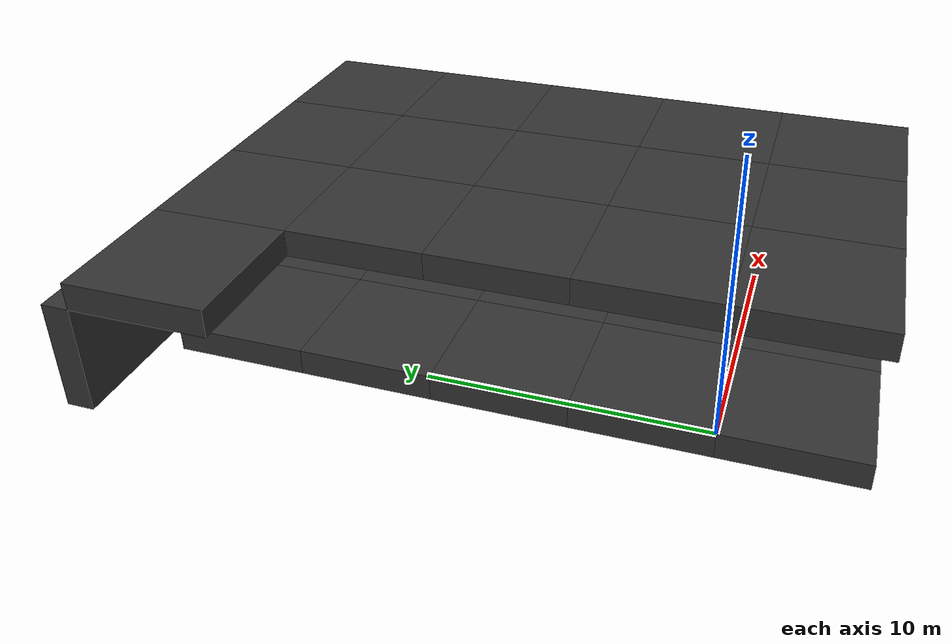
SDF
<sdf version="1.7">
 <world name="RG1">
  <model name="ceiling_36">
   <static>true</static>
   <pose>-2.5 17.5 4.5 0.0 0.0 0.0</pose>
   <link name="ceiling_36-base-link">
    <visual name="ceiling_36-visual">
     <geometry><box><size>5 5 1.0</size></box></geometry>
     <material><diffuse>0.2 0.2 0.2 1</diffuse><specular>0.1 0.1 0.1 1</specular></material>
    </visual>
    <collision name="ceiling_36-collision"><geometry><box><size>5 5 1.0</size></box></geometry></collision>
    <light type="point" name="ceiling_36-light">
     <pose>0 0 -1 0 0 0</pose>
     <cast_shadows>false</cast_shadows>
     <diffuse>0.8 0.8 0.8 1</diffuse>
     <attenuation>
      <range>10</range>
      <constant>0.8</constant>
      <linear>0.05</linear>
      <quadratic>0.01</quadratic>
     </attenuation>
    </light>
   </link>
  </model>
  <model name="wall_17">
   <static>true</static>
   <pose>-2.5 20.5 2.0 0.0 0.0 0.0</pose>
   <link name="wall_17-base-link">
    <visual name="wall_17-visual">
     <geometry><box><size>5 1 4</size></box></geometry>
     <material><diffuse>0.2 0.2 0.2 1</diffuse><specular>0.1 0.1 0.1 1</specular></material>
    </visual>
    <collision name="wall_17-collision"><geometry><box><size>5 1 4</size></box></geometry></collision>
   </link>
  </model>
  <model name="floor_41">
   <static>true</static>
   <pose>2.5 -2.5 -0.5 0.0 0.0 0.0</pose>
   <link name="floor_41-base-link">
    <visual name="floor_41-visual">
     <geometry><box><size>5 5 1.0</size></box></geometry>
     <material><diffuse>0.2 0.2 0.2 1</diffuse><specular>0.1 0.1 0.1 1</specular></material>
    </visual>
    <collision name="floor_41-collision"><geometry><box><size>5 5 1.0</size></box></geometry></collision>
   </link>
  </model>
  <model name="ceiling_41">
   <static>true</static>
   <pose>2.5 -2.5 4.5 0.0 0.0 0.0</pose>
   <link name="ceiling_41-base-link">
    <visual name="ceiling_41-visual">
     <geometry><box><size>5 5 1.0</size></box></geometry>
     <material><diffuse>0.2 0.2 0.2 1</diffuse><specular>0.1 0.1 0.1 1</specular></material>
    </visual>
    <collision name="ceiling_41-collision"><geometry><box><size>5 5 1.0</size></box></geometry></collision>
    <light type="point" name="ceiling_41-light">
     <pose>0 0 -1 0 0 0</pose>
     <cast_shadows>false</cast_shadows>
     <diffuse>0.8 0.8 0.8 1</diffuse>
     <attenuation>
      <range>10</range>
      <constant>0.8</constant>
      <linear>0.05</linear>
      <quadratic>0.01</quadratic>
     </attenuation>
    </light>
   </link>
  </model>
  <model name="floor_42">
   <static>true</static>
   <pose>2.5 2.5 -0.5 0.0 0.0 0.0</pose>
   <link name="floor_42-base-link">
    <visual name="floor_42-visual">
     <geometry><box><size>5 5 1.0</size></box></geometry>
     <material><diffuse>0.2 0.2 0.2 1</diffuse><specular>0.1 0.1 0.1 1</specular></material>
    </visual>
    <collision name="floor_42-collision"><geometry><box><size>5 5 1.0</size></box></geometry></collision>
   </link>
  </model>
  <model name="ceiling_42">
   <static>true</static>
   <pose>2.5 2.5 4.5 0.0 0.0 0.0</pose>
   <link name="ceiling_42-base-link">
    <visual name="ceiling_42-visual">
     <geometry><box><size>5 5 1.0</size></box></geometry>
     <material><diffuse>0.2 0.2 0.2 1</diffuse><specular>0.1 0.1 0.1 1</specular></material>
    </visual>
    <collision name="ceiling_42-collision"><geometry><box><size>5 5 1.0</size></box></geometry></collision>
    <light type="point" name="ceiling_42-light">
     <pose>0 0 -1 0 0 0</pose>
     <cast_shadows>false</cast_shadows>
     <diffuse>0.8 0.8 0.8 1</diffuse>
     <attenuation>
      <range>10</range>
      <constant>0.8</constant>
      <linear>0.05</linear>
      <quadratic>0.01</quadratic>
     </attenuation>
    </light>
   </link>
  </model>
  <model name="floor_43">
   <static>true</static>
   <pose>2.5 7.5 -0.5 0.0 0.0 0.0</pose>
   <link name="floor_43-base-link">
    <visual name="floor_43-visual">
     <geometry><box><size>5 5 1.0</size></box></geometry>
     <material><diffuse>0.2 0.2 0.2 1</diffuse><specular>0.1 0.1 0.1 1</specular></material>
    </visual>
    <collision name="floor_43-collision"><geometry><box><size>5 5 1.0</size></box></geometry></collision>
   </link>
  </model>
  <model name="ceiling_43">
   <static>true</static>
   <pose>2.5 7.5 4.5 0.0 0.0 0.0</pose>
   <link name="ceiling_43-base-link">
    <visual name="ceiling_43-visual">
     <geometry><box><size>5 5 1.0</size></box></geometry>
     <material><diffuse>0.2 0.2 0.2 1</diffuse><specular>0.1 0.1 0.1 1</specular></material>
    </visual>
    <collision name="ceiling_43-collision"><geometry><box><size>5 5 1.0</size></box></geometry></collision>
    <light type="point" name="ceiling_43-light">
     <pose>0 0 -1 0 0 0</pose>
     <cast_shadows>false</cast_shadows>
     <diffuse>0.8 0.8 0.8 1</diffuse>
     <attenuation>
      <range>10</range>
      <constant>0.8</constant>
      <linear>0.05</linear>
      <quadratic>0.01</quadratic>
     </attenuation>
    </light>
   </link>
  </model>
  <model name="floor_44">
   <static>true</static>
   <pose>2.5 12.5 -0.5 0.0 0.0 0.0</pose>
   <link name="floor_44-base-link">
    <visual name="floor_44-visual">
     <geometry><box><size>5 5 1.0</size></box></geometry>
     <material><diffuse>0.2 0.2 0.2 1</diffuse><specular>0.1 0.1 0.1 1</specular></material>
    </visual>
    <collision name="floor_44-collision"><geometry><box><size>5 5 1.0</size></box></geometry></collision>
   </link>
  </model>
  <model name="ceiling_44">
   <static>true</static>
   <pose>2.5 12.5 4.5 0.0 0.0 0.0</pose>
   <link name="ceiling_44-base-link">
    <visual name="ceiling_44-visual">
     <geometry><box><size>5 5 1.0</size></box></geometry>
     <material><diffuse>0.2 0.2 0.2 1</diffuse><specular>0.1 0.1 0.1 1</specular></material>
    </visual>
    <collision name="ceiling_44-collision"><geometry><box><size>5 5 1.0</size></box></geometry></collision>
    <light type="point" name="ceiling_44-light">
     <pose>0 0 -1 0 0 0</pose>
     <cast_shadows>false</cast_shadows>
     <diffuse>0.8 0.8 0.8 1</diffuse>
     <attenuation>
      <range>10</range>
      <constant>0.8</constant>
      <linear>0.05</linear>
      <quadratic>0.01</quadratic>
     </attenuation>
    </light>
   </link>
  </model>
  <model name="floor_45">
   <static>true</static>
   <pose>2.5 17.5 -0.5 0.0 0.0 0.0</pose>
   <link name="floor_45-base-link">
    <visual name="floor_45-visual">
     <geometry><box><size>5 5 1.0</size></box></geometry>
     <material><diffuse>0.2 0.2 0.2 1</diffuse><specular>0.1 0.1 0.1 1</specular></material>
    </visual>
    <collision name="floor_45-collision"><geometry><box><size>5 5 1.0</size></box></geometry></collision>
   </link>
  </model>
  <model name="ceiling_45">
   <static>true</static>
   <pose>2.5 17.5 4.5 0.0 0.0 0.0</pose>
   <link name="ceiling_45-base-link">
    <visual name="ceiling_45-visual">
     <geometry><box><size>5 5 1.0</size></box></geometry>
     <material><diffuse>0.2 0.2 0.2 1</diffuse><specular>0.1 0.1 0.1 1</specular></material>
    </visual>
    <collision name="ceiling_45-collision"><geometry><box><size>5 5 1.0</size></box></geometry></collision>
    <light type="point" name="ceiling_45-light">
     <pose>0 0 -1 0 0 0</pose>
     <cast_shadows>false</cast_shadows>
     <diffuse>0.8 0.8 0.8 1</diffuse>
     <attenuation>
      <range>10</range>
      <constant>0.8</constant>
      <linear>0.05</linear>
      <quadratic>0.01</quadratic>
     </attenuation>
    </light>
   </link>
  </model>
  <model name="wall_19">
   <static>true</static>
   <pose>2.5 20.5 2.0 0.0 0.0 0.0</pose>
   <link name="wall_19-base-link">
    <visual name="wall_19-visual">
     <geometry><box><size>5 1 4</size></box></geometry>
     <material><diffuse>0.2 0.2 0.2 1</diffuse><specular>0.1 0.1 0.1 1</specular></material>
    </visual>
    <collision name="wall_19-collision"><geometry><box><size>5 1 4</size></box></geometry></collision>
   </link>
  </model>
  <model name="floor_50">
   <static>true</static>
   <pose>7.5 -2.5 -0.5 0.0 0.0 0.0</pose>
   <link name="floor_50-base-link">
    <visual name="floor_50-visual">
     <geometry><box><size>5 5 1.0</size></box></geometry>
     <material><diffuse>0.2 0.2 0.2 1</diffuse><specular>0.1 0.1 0.1 1</specular></material>
    </visual>
    <collision name="floor_50-collision"><geometry><box><size>5 5 1.0</size></box></geometry></collision>
   </link>
  </model>
  <model name="ceiling_50">
   <static>true</static>
   <pose>7.5 -2.5 4.5 0.0 0.0 0.0</pose>
   <link name="ceiling_50-base-link">
    <visual name="ceiling_50-visual">
     <geometry><box><size>5 5 1.0</size></box></geometry>
     <material><diffuse>0.2 0.2 0.2 1</diffuse><specular>0.1 0.1 0.1 1</specular></material>
    </visual>
    <collision name="ceiling_50-collision"><geometry><box><size>5 5 1.0</size></box></geometry></collision>
    <light type="point" name="ceiling_50-light">
     <pose>0 0 -1 0 0 0</pose>
     <cast_shadows>false</cast_shadows>
     <diffuse>0.8 0.8 0.8 1</diffuse>
     <attenuation>
      <range>10</range>
      <constant>0.8</constant>
      <linear>0.05</linear>
      <quadratic>0.01</quadratic>
     </attenuation>
    </light>
   </link>
  </model>
  <model name="floor_51">
   <static>true</static>
   <pose>7.5 2.5 -0.5 0.0 0.0 0.0</pose>
   <link name="floor_51-base-link">
    <visual name="floor_51-visual">
     <geometry><box><size>5 5 1.0</size></box></geometry>
     <material><diffuse>0.2 0.2 0.2 1</diffuse><specular>0.1 0.1 0.1 1</specular></material>
    </visual>
    <collision name="floor_51-collision"><geometry><box><size>5 5 1.0</size></box></geometry></collision>
   </link>
  </model>
  <model name="ceiling_51">
   <static>true</static>
   <pose>7.5 2.5 4.5 0.0 0.0 0.0</pose>
   <link name="ceiling_51-base-link">
    <visual name="ceiling_51-visual">
     <geometry><box><size>5 5 1.0</size></box></geometry>
     <material><diffuse>0.2 0.2 0.2 1</diffuse><specular>0.1 0.1 0.1 1</specular></material>
    </visual>
    <collision name="ceiling_51-collision"><geometry><box><size>5 5 1.0</size></box></geometry></collision>
    <light type="point" name="ceiling_51-light">
     <pose>0 0 -1 0 0 0</pose>
     <cast_shadows>false</cast_shadows>
     <diffuse>0.8 0.8 0.8 1</diffuse>
     <attenuation>
      <range>10</range>
      <constant>0.8</constant>
      <linear>0.05</linear>
      <quadratic>0.01</quadratic>
     </attenuation>
    </light>
   </link>
  </model>
  <model name="floor_52">
   <static>true</static>
   <pose>7.5 7.5 -0.5 0.0 0.0 0.0</pose>
   <link name="floor_52-base-link">
    <visual name="floor_52-visual">
     <geometry><box><size>5 5 1.0</size></box></geometry>
     <material><diffuse>0.2 0.2 0.2 1</diffuse><specular>0.1 0.1 0.1 1</specular></material>
    </visual>
    <collision name="floor_52-collision"><geometry><box><size>5 5 1.0</size></box></geometry></collision>
   </link>
  </model>
  <model name="ceiling_52">
   <static>true</static>
   <pose>7.5 7.5 4.5 0.0 0.0 0.0</pose>
   <link name="ceiling_52-base-link">
    <visual name="ceiling_52-visual">
     <geometry><box><size>5 5 1.0</size></box></geometry>
     <material><diffuse>0.2 0.2 0.2 1</diffuse><specular>0.1 0.1 0.1 1</specular></material>
    </visual>
    <collision name="ceiling_52-collision"><geometry><box><size>5 5 1.0</size></box></geometry></collision>
    <light type="point" name="ceiling_52-light">
     <pose>0 0 -1 0 0 0</pose>
     <cast_shadows>false</cast_shadows>
     <diffuse>0.8 0.8 0.8 1</diffuse>
     <attenuation>
      <range>10</range>
      <constant>0.8</constant>
      <linear>0.05</linear>
      <quadratic>0.01</quadratic>
     </attenuation>
    </light>
   </link>
  </model>
  <model name="floor_53">
   <static>true</static>
   <pose>7.5 12.5 -0.5 0.0 0.0 0.0</pose>
   <link name="floor_53-base-link">
    <visual name="floor_53-visual">
     <geometry><box><size>5 5 1.0</size></box></geometry>
     <material><diffuse>0.2 0.2 0.2 1</diffuse><specular>0.1 0.1 0.1 1</specular></material>
    </visual>
    <collision name="floor_53-collision"><geometry><box><size>5 5 1.0</size></box></geometry></collision>
   </link>
  </model>
  <model name="ceiling_53">
   <static>true</static>
   <pose>7.5 12.5 4.5 0.0 0.0 0.0</pose>
   <link name="ceiling_53-base-link">
    <visual name="ceiling_53-visual">
     <geometry><box><size>5 5 1.0</size></box></geometry>
     <material><diffuse>0.2 0.2 0.2 1</diffuse><specular>0.1 0.1 0.1 1</specular></material>
    </visual>
    <collision name="ceiling_53-collision"><geometry><box><size>5 5 1.0</size></box></geometry></collision>
    <light type="point" name="ceiling_53-light">
     <pose>0 0 -1 0 0 0</pose>
     <cast_shadows>false</cast_shadows>
     <diffuse>0.8 0.8 0.8 1</diffuse>
     <attenuation>
      <range>10</range>
      <constant>0.8</constant>
      <linear>0.05</linear>
      <quadratic>0.01</quadratic>
     </attenuation>
    </light>
   </link>
  </model>
  <model name="floor_54">
   <static>true</static>
   <pose>7.5 17.5 -0.5 0.0 0.0 0.0</pose>
   <link name="floor_54-base-link">
    <visual name="floor_54-visual">
     <geometry><box><size>5 5 1.0</size></box></geometry>
     <material><diffuse>0.2 0.2 0.2 1</diffuse><specular>0.1 0.1 0.1 1</specular></material>
    </visual>
    <collision name="floor_54-collision"><geometry><box><size>5 5 1.0</size></box></geometry></collision>
   </link>
  </model>
  <model name="ceiling_54">
   <static>true</static>
   <pose>7.5 17.5 4.5 0.0 0.0 0.0</pose>
   <link name="ceiling_54-base-link">
    <visual name="ceiling_54-visual">
     <geometry><box><size>5 5 1.0</size></box></geometry>
     <material><diffuse>0.2 0.2 0.2 1</diffuse><specular>0.1 0.1 0.1 1</specular></material>
    </visual>
    <collision name="ceiling_54-collision"><geometry><box><size>5 5 1.0</size></box></geometry></collision>
    <light type="point" name="ceiling_54-light">
     <pose>0 0 -1 0 0 0</pose>
     <cast_shadows>false</cast_shadows>
     <diffuse>0.8 0.8 0.8 1</diffuse>
     <attenuation>
      <range>10</range>
      <constant>0.8</constant>
      <linear>0.05</linear>
      <quadratic>0.01</quadratic>
     </attenuation>
    </light>
   </link>
  </model>
  <model name="wall_21">
   <static>true</static>
   <pose>7.5 20.5 2.0 0.0 0.0 0.0</pose>
   <link name="wall_21-base-link">
    <visual name="wall_21-visual">
     <geometry><box><size>5 1 4</size></box></geometry>
     <material><diffuse>0.2 0.2 0.2 1</diffuse><specular>0.1 0.1 0.1 1</specular></material>
    </visual>
    <collision name="wall_21-collision"><geometry><box><size>5 1 4</size></box></geometry></collision>
   </link>
  </model>
  <model name="floor_59">
   <static>true</static>
   <pose>12.5 -2.5 -0.5 0.0 0.0 0.0</pose>
   <link name="floor_59-base-link">
    <visual name="floor_59-visual">
     <geometry><box><size>5 5 1.0</size></box></geometry>
     <material><diffuse>0.2 0.2 0.2 1</diffuse><specular>0.1 0.1 0.1 1</specular></material>
    </visual>
    <collision name="floor_59-collision"><geometry><box><size>5 5 1.0</size></box></geometry></collision>
   </link>
  </model>
  <model name="ceiling_59">
   <static>true</static>
   <pose>12.5 -2.5 4.5 0.0 0.0 0.0</pose>
   <link name="ceiling_59-base-link">
    <visual name="ceiling_59-visual">
     <geometry><box><size>5 5 1.0</size></box></geometry>
     <material><diffuse>0.2 0.2 0.2 1</diffuse><specular>0.1 0.1 0.1 1</specular></material>
    </visual>
    <collision name="ceiling_59-collision"><geometry><box><size>5 5 1.0</size></box></geometry></collision>
    <light type="point" name="ceiling_59-light">
     <pose>0 0 -1 0 0 0</pose>
     <cast_shadows>false</cast_shadows>
     <diffuse>0.8 0.8 0.8 1</diffuse>
     <attenuation>
      <range>10</range>
      <constant>0.8</constant>
      <linear>0.05</linear>
      <quadratic>0.01</quadratic>
     </attenuation>
    </light>
   </link>
  </model>
  <model name="wall_27">
   <static>true</static>
   <pose>15.5 -2.5 2.0 0.0 0.0 1.570796326795</pose>
   <link name="wall_27-base-link">
    <visual name="wall_27-visual">
     <geometry><box><size>5 1 4</size></box></geometry>
     <material><diffuse>0.2 0.2 0.2 1</diffuse><specular>0.1 0.1 0.1 1</specular></material>
    </visual>
    <collision name="wall_27-collision"><geometry><box><size>5 1 4</size></box></geometry></collision>
   </link>
  </model>
  <model name="floor_60">
   <static>true</static>
   <pose>12.5 2.5 -0.5 0.0 0.0 0.0</pose>
   <link name="floor_60-base-link">
    <visual name="floor_60-visual">
     <geometry><box><size>5 5 1.0</size></box></geometry>
     <material><diffuse>0.2 0.2 0.2 1</diffuse><specular>0.1 0.1 0.1 1</specular></material>
    </visual>
    <collision name="floor_60-collision"><geometry><box><size>5 5 1.0</size></box></geometry></collision>
   </link>
  </model>
  <model name="ceiling_60">
   <static>true</static>
   <pose>12.5 2.5 4.5 0.0 0.0 0.0</pose>
   <link name="ceiling_60-base-link">
    <visual name="ceiling_60-visual">
     <geometry><box><size>5 5 1.0</size></box></geometry>
     <material><diffuse>0.2 0.2 0.2 1</diffuse><specular>0.1 0.1 0.1 1</specular></material>
    </visual>
    <collision name="ceiling_60-collision"><geometry><box><size>5 5 1.0</size></box></geometry></collision>
    <light type="point" name="ceiling_60-light">
     <pose>0 0 -1 0 0 0</pose>
     <cast_shadows>false</cast_shadows>
     <diffuse>0.8 0.8 0.8 1</diffuse>
     <attenuation>
      <range>10</range>
      <constant>0.8</constant>
      <linear>0.05</linear>
      <quadratic>0.01</quadratic>
     </attenuation>
    </light>
   </link>
  </model>
  <model name="wall_28">
   <static>true</static>
   <pose>15.5 2.5 2.0 0.0 0.0 1.570796326795</pose>
   <link name="wall_28-base-link">
    <visual name="wall_28-visual">
     <geometry><box><size>5 1 4</size></box></geometry>
     <material><diffuse>0.2 0.2 0.2 1</diffuse><specular>0.1 0.1 0.1 1</specular></material>
    </visual>
    <collision name="wall_28-collision"><geometry><box><size>5 1 4</size></box></geometry></collision>
   </link>
  </model>
  <model name="floor_61">
   <static>true</static>
   <pose>12.5 7.5 -0.5 0.0 0.0 0.0</pose>
   <link name="floor_61-base-link">
    <visual name="floor_61-visual">
     <geometry><box><size>5 5 1.0</size></box></geometry>
     <material><diffuse>0.2 0.2 0.2 1</diffuse><specular>0.1 0.1 0.1 1</specular></material>
    </visual>
    <collision name="floor_61-collision"><geometry><box><size>5 5 1.0</size></box></geometry></collision>
   </link>
  </model>
  <model name="ceiling_61">
   <static>true</static>
   <pose>12.5 7.5 4.5 0.0 0.0 0.0</pose>
   <link name="ceiling_61-base-link">
    <visual name="ceiling_61-visual">
     <geometry><box><size>5 5 1.0</size></box></geometry>
     <material><diffuse>0.2 0.2 0.2 1</diffuse><specular>0.1 0.1 0.1 1</specular></material>
    </visual>
    <collision name="ceiling_61-collision"><geometry><box><size>5 5 1.0</size></box></geometry></collision>
    <light type="point" name="ceiling_61-light">
     <pose>0 0 -1 0 0 0</pose>
     <cast_shadows>false</cast_shadows>
     <diffuse>0.8 0.8 0.8 1</diffuse>
     <attenuation>
      <range>10</range>
      <constant>0.8</constant>
      <linear>0.05</linear>
      <quadratic>0.01</quadratic>
     </attenuation>
    </light>
   </link>
  </model>
  <model name="wall_29">
   <static>true</static>
   <pose>15.5 7.5 2.0 0.0 0.0 1.570796326795</pose>
   <link name="wall_29-base-link">
    <visual name="wall_29-visual">
     <geometry><box><size>5 1 4</size></box></geometry>
     <material><diffuse>0.2 0.2 0.2 1</diffuse><specular>0.1 0.1 0.1 1</specular></material>
    </visual>
    <collision name="wall_29-collision"><geometry><box><size>5 1 4</size></box></geometry></collision>
   </link>
  </model>
  <model name="floor_62">
   <static>true</static>
   <pose>12.5 12.5 -0.5 0.0 0.0 0.0</pose>
   <link name="floor_62-base-link">
    <visual name="floor_62-visual">
     <geometry><box><size>5 5 1.0</size></box></geometry>
     <material><diffuse>0.2 0.2 0.2 1</diffuse><specular>0.1 0.1 0.1 1</specular></material>
    </visual>
    <collision name="floor_62-collision"><geometry><box><size>5 5 1.0</size></box></geometry></collision>
   </link>
  </model>
  <model name="ceiling_62">
   <static>true</static>
   <pose>12.5 12.5 4.5 0.0 0.0 0.0</pose>
   <link name="ceiling_62-base-link">
    <visual name="ceiling_62-visual">
     <geometry><box><size>5 5 1.0</size></box></geometry>
     <material><diffuse>0.2 0.2 0.2 1</diffuse><specular>0.1 0.1 0.1 1</specular></material>
    </visual>
    <collision name="ceiling_62-collision"><geometry><box><size>5 5 1.0</size></box></geometry></collision>
    <light type="point" name="ceiling_62-light">
     <pose>0 0 -1 0 0 0</pose>
     <cast_shadows>false</cast_shadows>
     <diffuse>0.8 0.8 0.8 1</diffuse>
     <attenuation>
      <range>10</range>
      <constant>0.8</constant>
      <linear>0.05</linear>
      <quadratic>0.01</quadratic>
     </attenuation>
    </light>
   </link>
  </model>
  <model name="wall_30">
   <static>true</static>
   <pose>15.5 12.5 2.0 0.0 0.0 1.570796326795</pose>
   <link name="wall_30-base-link">
    <visual name="wall_30-visual">
     <geometry><box><size>5 1 4</size></box></geometry>
     <material><diffuse>0.2 0.2 0.2 1</diffuse><specular>0.1 0.1 0.1 1</specular></material>
    </visual>
    <collision name="wall_30-collision"><geometry><box><size>5 1 4</size></box></geometry></collision>
   </link>
  </model>
  <model name="floor_63">
   <static>true</static>
   <pose>12.5 17.5 -0.5 0.0 0.0 0.0</pose>
   <link name="floor_63-base-link">
    <visual name="floor_63-visual">
     <geometry><box><size>5 5 1.0</size></box></geometry>
     <material><diffuse>0.2 0.2 0.2 1</diffuse><specular>0.1 0.1 0.1 1</specular></material>
    </visual>
    <collision name="floor_63-collision"><geometry><box><size>5 5 1.0</size></box></geometry></collision>
   </link>
  </model>
  <model name="ceiling_63">
   <static>true</static>
   <pose>12.5 17.5 4.5 0.0 0.0 0.0</pose>
   <link name="ceiling_63-base-link">
    <visual name="ceiling_63-visual">
     <geometry><box><size>5 5 1.0</size></box></geometry>
     <material><diffuse>0.2 0.2 0.2 1</diffuse><specular>0.1 0.1 0.1 1</specular></material>
    </visual>
    <collision name="ceiling_63-collision"><geometry><box><size>5 5 1.0</size></box></geometry></collision>
    <light type="point" name="ceiling_63-light">
     <pose>0 0 -1 0 0 0</pose>
     <cast_shadows>false</cast_shadows>
     <diffuse>0.8 0.8 0.8 1</diffuse>
     <attenuation>
      <range>10</range>
      <constant>0.8</constant>
      <linear>0.05</linear>
      <quadratic>0.01</quadratic>
     </attenuation>
    </light>
   </link>
  </model>
  <model name="wall_31">
   <static>true</static>
   <pose>15.5 17.5 2.0 0.0 0.0 1.570796326795</pose>
   <link name="wall_31-base-link">
    <visual name="wall_31-visual">
     <geometry><box><size>5 1 4</size></box></geometry>
     <material><diffuse>0.2 0.2 0.2 1</diffuse><specular>0.1 0.1 0.1 1</specular></material>
    </visual>
    <collision name="wall_31-collision"><geometry><box><size>5 1 4</size></box></geometry></collision>
   </link>
  </model>
  <model name="wall_32">
   <static>true</static>
   <pose>12.5 20.5 2.0 0.0 0.0 0.0</pose>
   <link name="wall_32-base-link">
    <visual name="wall_32-visual">
     <geometry><box><size>5 1 4</size></box></geometry>
     <material><diffuse>0.2 0.2 0.2 1</diffuse><specular>0.1 0.1 0.1 1</specular></material>
    </visual>
    <collision name="wall_32-collision"><geometry><box><size>5 1 4</size></box></geometry></collision>
   </link>
  </model>
 </world>
</sdf>
